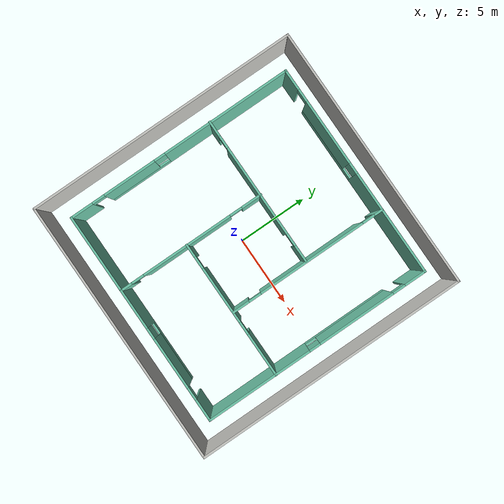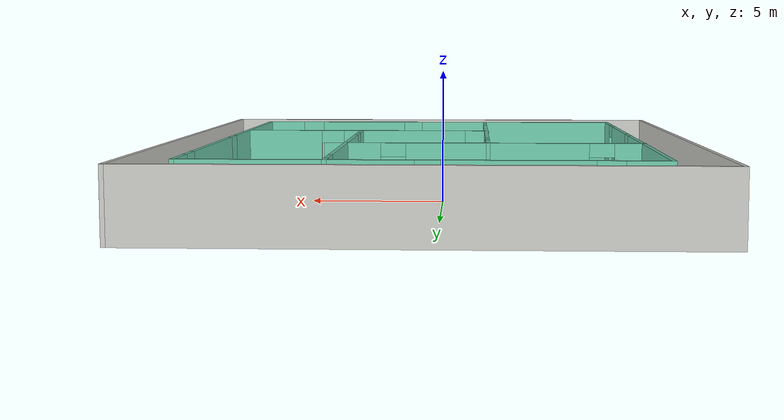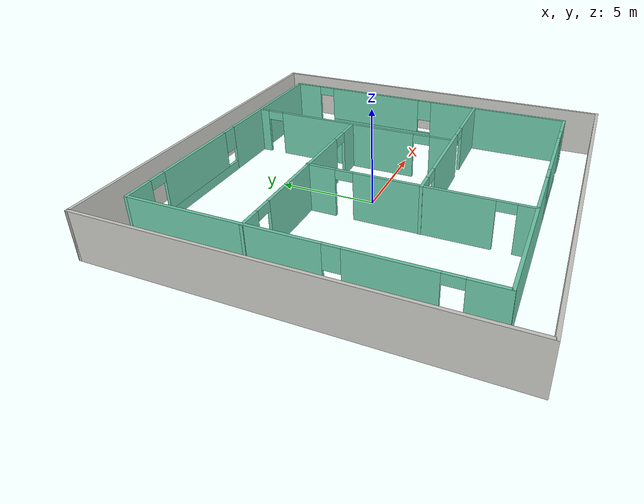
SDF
<?xml version='1.0'?>
<sdf version='1.6'>
  <model name='Building'>
    <pose frame=''>0.407103 0.041885 0 0 -0 0</pose>
    <link name='Wall_101'>
      <pose frame=''>-2.08663 -2.75527 0 0 -0 -1.5708</pose>
      <visual name='Wall_101_Visual_0'>
        <pose frame=''>-4.61745 0 1.25 0 -0 0</pose>
        <geometry>
          <box>
            <size>1.51509 0.15 2.5</size>
          </box>
        </geometry>
        <material>
          <script>
            <uri>file://media/materials/scripts/gazebo.material</uri>
            <name>Gazebo/Grey</name>
          </script>
          <ambient>0.435294 0.796078 0.67451 1</ambient>
        </material>
        <meta>
          <layer>0</layer>
        </meta>
      </visual>
      <collision name='Wall_101_Collision_0'>
        <geometry>
          <box>
            <size>1.51509 0.15 2.5</size>
          </box>
        </geometry>
        <pose frame=''>-4.61745 0 1.25 0 -0 0</pose>
      </collision>
      <visual name='Wall_101_Visual_1'>
        <pose frame=''>0.323003 0 1.25 0 -0 0</pose>
        <geometry>
          <box>
            <size>6.56583 0.15 2.5</size>
          </box>
        </geometry>
        <material>
          <script>
            <uri>file://media/materials/scripts/gazebo.material</uri>
            <name>Gazebo/Grey</name>
          </script>
          <ambient>0.435294 0.796078 0.67451 1</ambient>
        </material>
        <meta>
          <layer>0</layer>
        </meta>
      </visual>
      <collision name='Wall_101_Collision_1'>
        <geometry>
          <box>
            <size>6.56583 0.15 2.5</size>
          </box>
        </geometry>
        <pose frame=''>0.323003 0 1.25 0 -0 0</pose>
      </collision>
      <visual name='Wall_101_Visual_2'>
        <pose frame=''>4.94046 0 1.25 0 -0 0</pose>
        <geometry>
          <box>
            <size>0.869084 0.15 2.5</size>
          </box>
        </geometry>
        <material>
          <script>
            <uri>file://media/materials/scripts/gazebo.material</uri>
            <name>Gazebo/Grey</name>
          </script>
          <ambient>0.435294 0.796078 0.67451 1</ambient>
        </material>
        <meta>
          <layer>0</layer>
        </meta>
      </visual>
      <collision name='Wall_101_Collision_2'>
        <geometry>
          <box>
            <size>0.869084 0.15 2.5</size>
          </box>
        </geometry>
        <pose frame=''>4.94046 0 1.25 0 -0 0</pose>
      </collision>
      <visual name='Wall_101_Visual_3'>
        <pose frame=''>-3.40991 0 2.25 0 -0 0</pose>
        <geometry>
          <box>
            <size>0.9 0.15 0.5</size>
          </box>
        </geometry>
        <material>
          <script>
            <uri>file://media/materials/scripts/gazebo.material</uri>
            <name>Gazebo/Grey</name>
          </script>
          <ambient>0.435294 0.796078 0.67451 1</ambient>
        </material>
        <meta>
          <layer>0</layer>
        </meta>
      </visual>
      <collision name='Wall_101_Collision_3'>
        <geometry>
          <box>
            <size>0.9 0.15 0.5</size>
          </box>
        </geometry>
        <pose frame=''>-3.40991 0 2.25 0 -0 0</pose>
      </collision>
      <visual name='Wall_101_Visual_4'>
        <pose frame=''>4.05592 0 2.25 0 -0 0</pose>
        <geometry>
          <box>
            <size>0.9 0.15 0.5</size>
          </box>
        </geometry>
        <material>
          <script>
            <uri>file://media/materials/scripts/gazebo.material</uri>
            <name>Gazebo/Grey</name>
          </script>
          <ambient>0.435294 0.796078 0.67451 1</ambient>
        </material>
        <meta>
          <layer>0</layer>
        </meta>
      </visual>
      <collision name='Wall_101_Collision_4'>
        <geometry>
          <box>
            <size>0.9 0.15 0.5</size>
          </box>
        </geometry>
        <pose frame=''>4.05592 0 2.25 0 -0 0</pose>
      </collision>
    </link>
    <link name='Wall_84'>
      <collision name='Wall_84_Collision'>
        <geometry>
          <box>
            <size>19.5 0.15 2.5</size>
          </box>
        </geometry>
        <pose frame=''>0 0 1.25 0 -0 0</pose>
      </collision>
      <visual name='Wall_84_Visual'>
        <pose frame=''>0 0 1.25 0 -0 0</pose>
        <geometry>
          <box>
            <size>19.5 0.15 2.5</size>
          </box>
        </geometry>
        <material>
          <script>
            <uri>file://media/materials/scripts/gazebo.material</uri>
            <name>Gazebo/CeilingTiled</name>
          </script>
          <ambient>1 1 1 1</ambient>
        </material>
        <meta>
          <layer>0</layer>
        </meta>
      </visual>
      <pose frame=''>-9.425 0 0 0 -0 -1.5708</pose>
    </link>
    <link name='Wall_85'>
      <collision name='Wall_85_Collision'>
        <geometry>
          <box>
            <size>19 0.15 2.5</size>
          </box>
        </geometry>
        <pose frame=''>0 0 1.25 0 -0 0</pose>
      </collision>
      <visual name='Wall_85_Visual'>
        <pose frame=''>0 0 1.25 0 -0 0</pose>
        <geometry>
          <box>
            <size>19 0.15 2.5</size>
          </box>
        </geometry>
        <material>
          <script>
            <uri>file://media/materials/scripts/gazebo.material</uri>
            <name>Gazebo/CeilingTiled</name>
          </script>
          <ambient>1 1 1 1</ambient>
        </material>
        <meta>
          <layer>0</layer>
        </meta>
      </visual>
      <pose frame=''>0 -9.675 0 0 -0 0</pose>
    </link>
    <link name='Wall_86'>
      <collision name='Wall_86_Collision'>
        <geometry>
          <box>
            <size>19.5 0.15 2.5</size>
          </box>
        </geometry>
        <pose frame=''>0 0 1.25 0 -0 0</pose>
      </collision>
      <visual name='Wall_86_Visual'>
        <pose frame=''>0 0 1.25 0 -0 0</pose>
        <geometry>
          <box>
            <size>19.5 0.15 2.5</size>
          </box>
        </geometry>
        <material>
          <script>
            <uri>file://media/materials/scripts/gazebo.material</uri>
            <name>Gazebo/CeilingTiled</name>
          </script>
          <ambient>1 1 1 1</ambient>
        </material>
        <meta>
          <layer>0</layer>
        </meta>
      </visual>
      <pose frame=''>9.425 0 0 0 -0 1.5708</pose>
    </link>
    <link name='Wall_87'>
      <collision name='Wall_87_Collision'>
        <geometry>
          <box>
            <size>19 0.15 2.5</size>
          </box>
        </geometry>
        <pose frame=''>0 0 1.25 0 -0 0</pose>
      </collision>
      <visual name='Wall_87_Visual'>
        <pose frame=''>0 0 1.25 0 -0 0</pose>
        <geometry>
          <box>
            <size>19 0.15 2.5</size>
          </box>
        </geometry>
        <material>
          <script>
            <uri>file://media/materials/scripts/gazebo.material</uri>
            <name>Gazebo/CeilingTiled</name>
          </script>
          <ambient>1 1 1 1</ambient>
        </material>
        <meta>
          <layer>0</layer>
        </meta>
      </visual>
      <pose frame=''>0 9.675 0 0 -0 3.14159</pose>
    </link>
    <link name='Wall_88'>
      <collision name='Wall_88_Collision'>
        <geometry>
          <box>
            <size>0.16 0.15 2.5</size>
          </box>
        </geometry>
        <pose frame=''>0 0 1.25 0 -0 0</pose>
      </collision>
      <visual name='Wall_88_Visual'>
        <pose frame=''>0 0 1.25 0 -0 0</pose>
        <geometry>
          <box>
            <size>0.16 0.15 2.5</size>
          </box>
        </geometry>
        <material>
          <script>
            <uri>file://media/materials/scripts/gazebo.material</uri>
            <name>Gazebo/Grey</name>
          </script>
          <ambient>1 1 1 1</ambient>
        </material>
        <meta>
          <layer>0</layer>
        </meta>
      </visual>
      <pose frame=''>-9.42 9.675 0 0 -0 0</pose>
    </link>
    <link name='Wall_90'>
      <pose frame=''>-7.62558 0.103719 0 0 -0 -1.5708</pose>
      <visual name='Wall_90_Visual_0'>
        <pose frame=''>-3.59802 0 1.25 0 -0 0</pose>
        <geometry>
          <box>
            <size>9.30396 0.15 2.5</size>
          </box>
        </geometry>
        <material>
          <script>
            <uri>file://media/materials/scripts/gazebo.material</uri>
            <name>Gazebo/Grey</name>
          </script>
          <ambient>0.435294 0.796078 0.67451 1</ambient>
        </material>
        <meta>
          <layer>0</layer>
        </meta>
      </visual>
      <collision name='Wall_90_Collision_0'>
        <geometry>
          <box>
            <size>9.30396 0.15 2.5</size>
          </box>
        </geometry>
        <pose frame=''>-3.59802 0 1.25 0 -0 0</pose>
      </collision>
      <visual name='Wall_90_Visual_1'>
        <pose frame=''>7.40961 0 1.25 0 -0 0</pose>
        <geometry>
          <box>
            <size>1.68078 0.15 2.5</size>
          </box>
        </geometry>
        <material>
          <script>
            <uri>file://media/materials/scripts/gazebo.material</uri>
            <name>Gazebo/Grey</name>
          </script>
          <ambient>0.435294 0.796078 0.67451 1</ambient>
        </material>
        <meta>
          <layer>0</layer>
        </meta>
      </visual>
      <collision name='Wall_90_Collision_1'>
        <geometry>
          <box>
            <size>1.68078 0.15 2.5</size>
          </box>
        </geometry>
        <pose frame=''>7.40961 0 1.25 0 -0 0</pose>
      </collision>
      <visual name='Wall_90_Visual_2'>
        <pose frame=''>3.36159 0 0.25 0 -0 0</pose>
        <geometry>
          <box>
            <size>4.61526 0.15 0.5</size>
          </box>
        </geometry>
        <material>
          <script>
            <uri>file://media/materials/scripts/gazebo.material</uri>
            <name>Gazebo/Grey</name>
          </script>
          <ambient>0.435294 0.796078 0.67451 1</ambient>
        </material>
        <meta>
          <layer>0</layer>
        </meta>
      </visual>
      <collision name='Wall_90_Collision_2'>
        <geometry>
          <box>
            <size>4.61526 0.15 0.5</size>
          </box>
        </geometry>
        <pose frame=''>3.36159 0 0.25 0 -0 0</pose>
      </collision>
      <visual name='Wall_90_Visual_3'>
        <pose frame=''>3.76159 0 1.5 0 -0 0</pose>
        <geometry>
          <box>
            <size>3.81526 0.15 2</size>
          </box>
        </geometry>
        <material>
          <script>
            <uri>file://media/materials/scripts/gazebo.material</uri>
            <name>Gazebo/Grey</name>
          </script>
          <ambient>0.435294 0.796078 0.67451 1</ambient>
        </material>
        <meta>
          <layer>0</layer>
        </meta>
      </visual>
      <collision name='Wall_90_Collision_3'>
        <geometry>
          <box>
            <size>3.81526 0.15 2</size>
          </box>
        </geometry>
        <pose frame=''>3.76159 0 1.5 0 -0 0</pose>
      </collision>
      <visual name='Wall_90_Visual_4'>
        <pose frame=''>1.45396 0 1.9 0 -0 0</pose>
        <geometry>
          <box>
            <size>0.8 0.15 1.2</size>
          </box>
        </geometry>
        <material>
          <script>
            <uri>file://media/materials/scripts/gazebo.material</uri>
            <name>Gazebo/Grey</name>
          </script>
          <ambient>0.435294 0.796078 0.67451 1</ambient>
        </material>
        <meta>
          <layer>0</layer>
        </meta>
      </visual>
      <collision name='Wall_90_Collision_4'>
        <geometry>
          <box>
            <size>0.8 0.15 1.2</size>
          </box>
        </geometry>
        <pose frame=''>1.45396 0 1.9 0 -0 0</pose>
      </collision>
      <visual name='Wall_90_Visual_5'>
        <pose frame=''>6.11922 0 2.25 0 -0 0</pose>
        <geometry>
          <box>
            <size>0.9 0.15 0.5</size>
          </box>
        </geometry>
        <material>
          <script>
            <uri>file://media/materials/scripts/gazebo.material</uri>
            <name>Gazebo/Grey</name>
          </script>
          <ambient>0.435294 0.796078 0.67451 1</ambient>
        </material>
        <meta>
          <layer>0</layer>
        </meta>
      </visual>
      <collision name='Wall_90_Collision_5'>
        <geometry>
          <box>
            <size>0.9 0.15 0.5</size>
          </box>
        </geometry>
        <pose frame=''>6.11922 0 2.25 0 -0 0</pose>
      </collision>
    </link>
    <link name='Wall_91'>
      <pose frame=''>0.049418 -8.07128 0 0 -0 0</pose>
      <visual name='Wall_91_Visual_0'>
        <pose frame=''>-3.51293 0 1.25 0 -0 0</pose>
        <geometry>
          <box>
            <size>8.47414 0.15 2.5</size>
          </box>
        </geometry>
        <material>
          <script>
            <uri>file://media/materials/scripts/gazebo.material</uri>
            <name>Gazebo/Grey</name>
          </script>
          <ambient>0.435294 0.796078 0.67451 1</ambient>
        </material>
        <meta>
          <layer>0</layer>
        </meta>
      </visual>
      <collision name='Wall_91_Collision_0'>
        <geometry>
          <box>
            <size>8.47414 0.15 2.5</size>
          </box>
        </geometry>
        <pose frame=''>-3.51293 0 1.25 0 -0 0</pose>
      </collision>
      <visual name='Wall_91_Visual_1'>
        <pose frame=''>6.94158 0 1.25 0 -0 0</pose>
        <geometry>
          <box>
            <size>1.61685 0.15 2.5</size>
          </box>
        </geometry>
        <material>
          <script>
            <uri>file://media/materials/scripts/gazebo.material</uri>
            <name>Gazebo/Grey</name>
          </script>
          <ambient>0.435294 0.796078 0.67451 1</ambient>
        </material>
        <meta>
          <layer>0</layer>
        </meta>
      </visual>
      <collision name='Wall_91_Collision_1'>
        <geometry>
          <box>
            <size>1.61685 0.15 2.5</size>
          </box>
        </geometry>
        <pose frame=''>6.94158 0 1.25 0 -0 0</pose>
      </collision>
      <visual name='Wall_91_Visual_2'>
        <pose frame=''>2.97865 0 0.25 0 -0 0</pose>
        <geometry>
          <box>
            <size>4.50901 0.15 0.5</size>
          </box>
        </geometry>
        <material>
          <script>
            <uri>file://media/materials/scripts/gazebo.material</uri>
            <name>Gazebo/Grey</name>
          </script>
          <ambient>0.435294 0.796078 0.67451 1</ambient>
        </material>
        <meta>
          <layer>0</layer>
        </meta>
      </visual>
      <collision name='Wall_91_Collision_2'>
        <geometry>
          <box>
            <size>4.50901 0.15 0.5</size>
          </box>
        </geometry>
        <pose frame=''>2.97865 0 0.25 0 -0 0</pose>
      </collision>
      <visual name='Wall_91_Visual_3'>
        <pose frame=''>3.37865 0 1.5 0 -0 0</pose>
        <geometry>
          <box>
            <size>3.70901 0.15 2</size>
          </box>
        </geometry>
        <material>
          <script>
            <uri>file://media/materials/scripts/gazebo.material</uri>
            <name>Gazebo/Grey</name>
          </script>
          <ambient>0.435294 0.796078 0.67451 1</ambient>
        </material>
        <meta>
          <layer>0</layer>
        </meta>
      </visual>
      <collision name='Wall_91_Collision_3'>
        <geometry>
          <box>
            <size>3.70901 0.15 2</size>
          </box>
        </geometry>
        <pose frame=''>3.37865 0 1.5 0 -0 0</pose>
      </collision>
      <visual name='Wall_91_Visual_4'>
        <pose frame=''>1.12414 0 1.9 0 -0 0</pose>
        <geometry>
          <box>
            <size>0.8 0.15 1.2</size>
          </box>
        </geometry>
        <material>
          <script>
            <uri>file://media/materials/scripts/gazebo.material</uri>
            <name>Gazebo/Grey</name>
          </script>
          <ambient>0.435294 0.796078 0.67451 1</ambient>
        </material>
        <meta>
          <layer>0</layer>
        </meta>
      </visual>
      <collision name='Wall_91_Collision_4'>
        <geometry>
          <box>
            <size>0.8 0.15 1.2</size>
          </box>
        </geometry>
        <pose frame=''>1.12414 0 1.9 0 -0 0</pose>
      </collision>
      <visual name='Wall_91_Visual_5'>
        <pose frame=''>5.68315 0 2.25 0 -0 0</pose>
        <geometry>
          <box>
            <size>0.9 0.15 0.5</size>
          </box>
        </geometry>
        <material>
          <script>
            <uri>file://media/materials/scripts/gazebo.material</uri>
            <name>Gazebo/Grey</name>
          </script>
          <ambient>0.435294 0.796078 0.67451 1</ambient>
        </material>
        <meta>
          <layer>0</layer>
        </meta>
      </visual>
      <collision name='Wall_91_Collision_5'>
        <geometry>
          <box>
            <size>0.9 0.15 0.5</size>
          </box>
        </geometry>
        <pose frame=''>5.68315 0 2.25 0 -0 0</pose>
      </collision>
    </link>
    <link name='Wall_92'>
      <pose frame=''>7.72442 0.103719 0 0 -0 1.5708</pose>
      <visual name='Wall_92_Visual_0'>
        <pose frame=''>-4.42448 0 1.25 0 -0 0</pose>
        <geometry>
          <box>
            <size>7.65104 0.15 2.5</size>
          </box>
        </geometry>
        <material>
          <script>
            <uri>file://media/materials/scripts/gazebo.material</uri>
            <name>Gazebo/Grey</name>
          </script>
          <ambient>0.435294 0.796078 0.67451 1</ambient>
        </material>
        <meta>
          <layer>0</layer>
        </meta>
      </visual>
      <collision name='Wall_92_Collision_0'>
        <geometry>
          <box>
            <size>7.65104 0.15 2.5</size>
          </box>
        </geometry>
        <pose frame=''>-4.42448 0 1.25 0 -0 0</pose>
      </collision>
      <visual name='Wall_92_Visual_1'>
        <pose frame=''>7.45345 0 1.25 0 -0 0</pose>
        <geometry>
          <box>
            <size>1.5931 0.15 2.5</size>
          </box>
        </geometry>
        <material>
          <script>
            <uri>file://media/materials/scripts/gazebo.material</uri>
            <name>Gazebo/Grey</name>
          </script>
          <ambient>0.435294 0.796078 0.67451 1</ambient>
        </material>
        <meta>
          <layer>0</layer>
        </meta>
      </visual>
      <collision name='Wall_92_Collision_1'>
        <geometry>
          <box>
            <size>1.5931 0.15 2.5</size>
          </box>
        </geometry>
        <pose frame=''>7.45345 0 1.25 0 -0 0</pose>
      </collision>
      <visual name='Wall_92_Visual_2'>
        <pose frame=''>2.57897 0 0.25 0 -0 0</pose>
        <geometry>
          <box>
            <size>6.35586 0.15 0.5</size>
          </box>
        </geometry>
        <material>
          <script>
            <uri>file://media/materials/scripts/gazebo.material</uri>
            <name>Gazebo/Grey</name>
          </script>
          <ambient>0.435294 0.796078 0.67451 1</ambient>
        </material>
        <meta>
          <layer>0</layer>
        </meta>
      </visual>
      <collision name='Wall_92_Collision_2'>
        <geometry>
          <box>
            <size>6.35586 0.15 0.5</size>
          </box>
        </geometry>
        <pose frame=''>2.57897 0 0.25 0 -0 0</pose>
      </collision>
      <visual name='Wall_92_Visual_3'>
        <pose frame=''>2.97897 0 1.5 0 -0 0</pose>
        <geometry>
          <box>
            <size>5.55586 0.15 2</size>
          </box>
        </geometry>
        <material>
          <script>
            <uri>file://media/materials/scripts/gazebo.material</uri>
            <name>Gazebo/Grey</name>
          </script>
          <ambient>0.435294 0.796078 0.67451 1</ambient>
        </material>
        <meta>
          <layer>0</layer>
        </meta>
      </visual>
      <collision name='Wall_92_Collision_3'>
        <geometry>
          <box>
            <size>5.55586 0.15 2</size>
          </box>
        </geometry>
        <pose frame=''>2.97897 0 1.5 0 -0 0</pose>
      </collision>
      <visual name='Wall_92_Visual_4'>
        <pose frame=''>-0.198964 0 1.9 0 -0 0</pose>
        <geometry>
          <box>
            <size>0.8 0.15 1.2</size>
          </box>
        </geometry>
        <material>
          <script>
            <uri>file://media/materials/scripts/gazebo.material</uri>
            <name>Gazebo/Grey</name>
          </script>
          <ambient>0.435294 0.796078 0.67451 1</ambient>
        </material>
        <meta>
          <layer>0</layer>
        </meta>
      </visual>
      <collision name='Wall_92_Collision_4'>
        <geometry>
          <box>
            <size>0.8 0.15 1.2</size>
          </box>
        </geometry>
        <pose frame=''>-0.198964 0 1.9 0 -0 0</pose>
      </collision>
      <visual name='Wall_92_Visual_5'>
        <pose frame=''>6.2069 0 2.25 0 -0 0</pose>
        <geometry>
          <box>
            <size>0.9 0.15 0.5</size>
          </box>
        </geometry>
        <material>
          <script>
            <uri>file://media/materials/scripts/gazebo.material</uri>
            <name>Gazebo/Grey</name>
          </script>
          <ambient>0.435294 0.796078 0.67451 1</ambient>
        </material>
        <meta>
          <layer>0</layer>
        </meta>
      </visual>
      <collision name='Wall_92_Collision_5'>
        <geometry>
          <box>
            <size>0.9 0.15 0.5</size>
          </box>
        </geometry>
        <pose frame=''>6.2069 0 2.25 0 -0 0</pose>
      </collision>
    </link>
    <link name='Wall_93'>
      <pose frame=''>0.049418 8.27872 0 0 -0 3.14159</pose>
      <visual name='Wall_93_Visual_0'>
        <pose frame=''>-3.97565 0 1.25 0 -0 0</pose>
        <geometry>
          <box>
            <size>7.5487 0.15 2.5</size>
          </box>
        </geometry>
        <material>
          <script>
            <uri>file://media/materials/scripts/gazebo.material</uri>
            <name>Gazebo/Grey</name>
          </script>
          <ambient>0.435294 0.796078 0.67451 1</ambient>
        </material>
        <meta>
          <layer>0</layer>
        </meta>
      </visual>
      <collision name='Wall_93_Collision_0'>
        <geometry>
          <box>
            <size>7.5487 0.15 2.5</size>
          </box>
        </geometry>
        <pose frame=''>-3.97565 0 1.25 0 -0 0</pose>
      </collision>
      <visual name='Wall_93_Visual_1'>
        <pose frame=''>6.99241 0 1.25 0 -0 0</pose>
        <geometry>
          <box>
            <size>1.51518 0.15 2.5</size>
          </box>
        </geometry>
        <material>
          <script>
            <uri>file://media/materials/scripts/gazebo.material</uri>
            <name>Gazebo/Grey</name>
          </script>
          <ambient>0.435294 0.796078 0.67451 1</ambient>
        </material>
        <meta>
          <layer>0</layer>
        </meta>
      </visual>
      <collision name='Wall_93_Collision_1'>
        <geometry>
          <box>
            <size>1.51518 0.15 2.5</size>
          </box>
        </geometry>
        <pose frame=''>6.99241 0 1.25 0 -0 0</pose>
      </collision>
      <visual name='Wall_93_Visual_2'>
        <pose frame=''>2.56676 0 0.25 0 -0 0</pose>
        <geometry>
          <box>
            <size>5.53612 0.15 0.5</size>
          </box>
        </geometry>
        <material>
          <script>
            <uri>file://media/materials/scripts/gazebo.material</uri>
            <name>Gazebo/Grey</name>
          </script>
          <ambient>0.435294 0.796078 0.67451 1</ambient>
        </material>
        <meta>
          <layer>0</layer>
        </meta>
      </visual>
      <collision name='Wall_93_Collision_2'>
        <geometry>
          <box>
            <size>5.53612 0.15 0.5</size>
          </box>
        </geometry>
        <pose frame=''>2.56676 0 0.25 0 -0 0</pose>
      </collision>
      <visual name='Wall_93_Visual_3'>
        <pose frame=''>2.96676 0 1.5 0 -0 0</pose>
        <geometry>
          <box>
            <size>4.73612 0.15 2</size>
          </box>
        </geometry>
        <material>
          <script>
            <uri>file://media/materials/scripts/gazebo.material</uri>
            <name>Gazebo/Grey</name>
          </script>
          <ambient>0.435294 0.796078 0.67451 1</ambient>
        </material>
        <meta>
          <layer>0</layer>
        </meta>
      </visual>
      <collision name='Wall_93_Collision_3'>
        <geometry>
          <box>
            <size>4.73612 0.15 2</size>
          </box>
        </geometry>
        <pose frame=''>2.96676 0 1.5 0 -0 0</pose>
      </collision>
      <visual name='Wall_93_Visual_4'>
        <pose frame=''>0.198698 0 1.9 0 -0 0</pose>
        <geometry>
          <box>
            <size>0.8 0.15 1.2</size>
          </box>
        </geometry>
        <material>
          <script>
            <uri>file://media/materials/scripts/gazebo.material</uri>
            <name>Gazebo/Grey</name>
          </script>
          <ambient>0.435294 0.796078 0.67451 1</ambient>
        </material>
        <meta>
          <layer>0</layer>
        </meta>
      </visual>
      <collision name='Wall_93_Collision_4'>
        <geometry>
          <box>
            <size>0.8 0.15 1.2</size>
          </box>
        </geometry>
        <pose frame=''>0.198698 0 1.9 0 -0 0</pose>
      </collision>
      <visual name='Wall_93_Visual_5'>
        <pose frame=''>5.78482 0 2.25 0 -0 0</pose>
        <geometry>
          <box>
            <size>0.9 0.15 0.5</size>
          </box>
        </geometry>
        <material>
          <script>
            <uri>file://media/materials/scripts/gazebo.material</uri>
            <name>Gazebo/Grey</name>
          </script>
          <ambient>0.435294 0.796078 0.67451 1</ambient>
        </material>
        <meta>
          <layer>0</layer>
        </meta>
      </visual>
      <collision name='Wall_93_Collision_5'>
        <geometry>
          <box>
            <size>0.9 0.15 0.5</size>
          </box>
        </geometry>
        <pose frame=''>5.78482 0 2.25 0 -0 0</pose>
      </collision>
    </link>
    <link name='Wall_95'>
      <pose frame=''>-2.36459 2.50573 0 0 -0 0</pose>
      <visual name='Wall_95_Visual_0'>
        <pose frame=''>-4.80187 0 1.25 0 -0 0</pose>
        <geometry>
          <box>
            <size>1.14626 0.15 2.5</size>
          </box>
        </geometry>
        <material>
          <script>
            <uri>file://media/materials/scripts/gazebo.material</uri>
            <name>Gazebo/Grey</name>
          </script>
          <ambient>0.435294 0.796078 0.67451 1</ambient>
        </material>
        <meta>
          <layer>0</layer>
        </meta>
      </visual>
      <collision name='Wall_95_Collision_0'>
        <geometry>
          <box>
            <size>1.14626 0.15 2.5</size>
          </box>
        </geometry>
        <pose frame=''>-4.80187 0 1.25 0 -0 0</pose>
      </collision>
      <visual name='Wall_95_Visual_1'>
        <pose frame=''>-0.044669 0 1.25 0 -0 0</pose>
        <geometry>
          <box>
            <size>6.56814 0.15 2.5</size>
          </box>
        </geometry>
        <material>
          <script>
            <uri>file://media/materials/scripts/gazebo.material</uri>
            <name>Gazebo/Grey</name>
          </script>
          <ambient>0.435294 0.796078 0.67451 1</ambient>
        </material>
        <meta>
          <layer>0</layer>
        </meta>
      </visual>
      <collision name='Wall_95_Collision_1'>
        <geometry>
          <box>
            <size>6.56814 0.15 2.5</size>
          </box>
        </geometry>
        <pose frame=''>-0.044669 0 1.25 0 -0 0</pose>
      </collision>
      <visual name='Wall_95_Visual_2'>
        <pose frame=''>4.7572 0 1.25 0 -0 0</pose>
        <geometry>
          <box>
            <size>1.2356 0.15 2.5</size>
          </box>
        </geometry>
        <material>
          <script>
            <uri>file://media/materials/scripts/gazebo.material</uri>
            <name>Gazebo/Grey</name>
          </script>
          <ambient>0.435294 0.796078 0.67451 1</ambient>
        </material>
        <meta>
          <layer>0</layer>
        </meta>
      </visual>
      <collision name='Wall_95_Collision_2'>
        <geometry>
          <box>
            <size>1.2356 0.15 2.5</size>
          </box>
        </geometry>
        <pose frame=''>4.7572 0 1.25 0 -0 0</pose>
      </collision>
      <visual name='Wall_95_Visual_3'>
        <pose frame=''>-3.77874 0 2.25 0 -0 0</pose>
        <geometry>
          <box>
            <size>0.9 0.15 0.5</size>
          </box>
        </geometry>
        <material>
          <script>
            <uri>file://media/materials/scripts/gazebo.material</uri>
            <name>Gazebo/Grey</name>
          </script>
          <ambient>0.435294 0.796078 0.67451 1</ambient>
        </material>
        <meta>
          <layer>0</layer>
        </meta>
      </visual>
      <collision name='Wall_95_Collision_3'>
        <geometry>
          <box>
            <size>0.9 0.15 0.5</size>
          </box>
        </geometry>
        <pose frame=''>-3.77874 0 2.25 0 -0 0</pose>
      </collision>
      <visual name='Wall_95_Visual_4'>
        <pose frame=''>3.6894 0 2.25 0 -0 0</pose>
        <geometry>
          <box>
            <size>0.9 0.15 0.5</size>
          </box>
        </geometry>
        <material>
          <script>
            <uri>file://media/materials/scripts/gazebo.material</uri>
            <name>Gazebo/Grey</name>
          </script>
          <ambient>0.435294 0.796078 0.67451 1</ambient>
        </material>
        <meta>
          <layer>0</layer>
        </meta>
      </visual>
      <collision name='Wall_95_Collision_4'>
        <geometry>
          <box>
            <size>0.9 0.15 0.5</size>
          </box>
        </geometry>
        <pose frame=''>3.6894 0 2.25 0 -0 0</pose>
      </collision>
    </link>
    <link name='Wall_97'>
      <pose frame=''>3.02325 2.60372 0 0 -0 -1.5708</pose>
      <visual name='Wall_97_Visual_0'>
        <pose frame=''>-5.42153 0 1.25 0 -0 0</pose>
        <geometry>
          <box>
            <size>0.656941 0.15 2.5</size>
          </box>
        </geometry>
        <material>
          <script>
            <uri>file://media/materials/scripts/gazebo.material</uri>
            <name>Gazebo/Grey</name>
          </script>
          <ambient>0.435294 0.796078 0.67451 1</ambient>
        </material>
        <meta>
          <layer>0</layer>
        </meta>
      </visual>
      <collision name='Wall_97_Collision_0'>
        <geometry>
          <box>
            <size>0.656941 0.15 2.5</size>
          </box>
        </geometry>
        <pose frame=''>-5.42153 0 1.25 0 -0 0</pose>
      </collision>
      <visual name='Wall_97_Visual_1'>
        <pose frame=''>-0.309795 0 1.25 0 -0 0</pose>
        <geometry>
          <box>
            <size>7.76653 0.15 2.5</size>
          </box>
        </geometry>
        <material>
          <script>
            <uri>file://media/materials/scripts/gazebo.material</uri>
            <name>Gazebo/Grey</name>
          </script>
          <ambient>0.435294 0.796078 0.67451 1</ambient>
        </material>
        <meta>
          <layer>0</layer>
        </meta>
      </visual>
      <collision name='Wall_97_Collision_1'>
        <geometry>
          <box>
            <size>7.76653 0.15 2.5</size>
          </box>
        </geometry>
        <pose frame=''>-0.309795 0 1.25 0 -0 0</pose>
      </collision>
      <visual name='Wall_97_Visual_2'>
        <pose frame=''>5.11174 0 1.25 0 -0 0</pose>
        <geometry>
          <box>
            <size>1.27653 0.15 2.5</size>
          </box>
        </geometry>
        <material>
          <script>
            <uri>file://media/materials/scripts/gazebo.material</uri>
            <name>Gazebo/Grey</name>
          </script>
          <ambient>0.435294 0.796078 0.67451 1</ambient>
        </material>
        <meta>
          <layer>0</layer>
        </meta>
      </visual>
      <collision name='Wall_97_Collision_2'>
        <geometry>
          <box>
            <size>1.27653 0.15 2.5</size>
          </box>
        </geometry>
        <pose frame=''>5.11174 0 1.25 0 -0 0</pose>
      </collision>
      <visual name='Wall_97_Visual_3'>
        <pose frame=''>-4.64306 0 2.25 0 -0 0</pose>
        <geometry>
          <box>
            <size>0.9 0.15 0.5</size>
          </box>
        </geometry>
        <material>
          <script>
            <uri>file://media/materials/scripts/gazebo.material</uri>
            <name>Gazebo/Grey</name>
          </script>
          <ambient>0.435294 0.796078 0.67451 1</ambient>
        </material>
        <meta>
          <layer>0</layer>
        </meta>
      </visual>
      <collision name='Wall_97_Collision_3'>
        <geometry>
          <box>
            <size>0.9 0.15 0.5</size>
          </box>
        </geometry>
        <pose frame=''>-4.64306 0 2.25 0 -0 0</pose>
      </collision>
      <visual name='Wall_97_Visual_4'>
        <pose frame=''>4.02347 0 2.25 0 -0 0</pose>
        <geometry>
          <box>
            <size>0.9 0.15 0.5</size>
          </box>
        </geometry>
        <material>
          <script>
            <uri>file://media/materials/scripts/gazebo.material</uri>
            <name>Gazebo/Grey</name>
          </script>
          <ambient>0.435294 0.796078 0.67451 1</ambient>
        </material>
        <meta>
          <layer>0</layer>
        </meta>
      </visual>
      <collision name='Wall_97_Collision_4'>
        <geometry>
          <box>
            <size>0.9 0.15 0.5</size>
          </box>
        </geometry>
        <pose frame=''>4.02347 0 2.25 0 -0 0</pose>
      </collision>
    </link>
    <link name='Wall_99'>
      <pose frame=''>2.81806 -3.07223 0 0 -0 3.14159</pose>
      <visual name='Wall_99_Visual_0'>
        <pose frame=''>-3.42162 0 1.25 0 -0 0</pose>
        <geometry>
          <box>
            <size>3.15675 0.15 2.5</size>
          </box>
        </geometry>
        <material>
          <script>
            <uri>file://media/materials/scripts/gazebo.material</uri>
            <name>Gazebo/Grey</name>
          </script>
          <ambient>0.435294 0.796078 0.67451 1</ambient>
        </material>
        <meta>
          <layer>0</layer>
        </meta>
      </visual>
      <collision name='Wall_99_Collision_0'>
        <geometry>
          <box>
            <size>3.15675 0.15 2.5</size>
          </box>
        </geometry>
        <pose frame=''>-3.42162 0 1.25 0 -0 0</pose>
      </collision>
      <visual name='Wall_99_Visual_1'>
        <pose frame=''>1.10318 0 1.25 0 -0 0</pose>
        <geometry>
          <box>
            <size>4.09286 0.15 2.5</size>
          </box>
        </geometry>
        <material>
          <script>
            <uri>file://media/materials/scripts/gazebo.material</uri>
            <name>Gazebo/Grey</name>
          </script>
          <ambient>0.435294 0.796078 0.67451 1</ambient>
        </material>
        <meta>
          <layer>0</layer>
        </meta>
      </visual>
      <collision name='Wall_99_Collision_1'>
        <geometry>
          <box>
            <size>4.09286 0.15 2.5</size>
          </box>
        </geometry>
        <pose frame=''>1.10318 0 1.25 0 -0 0</pose>
      </collision>
      <visual name='Wall_99_Visual_2'>
        <pose frame=''>4.52481 0 1.25 0 -0 0</pose>
        <geometry>
          <box>
            <size>0.950387 0.15 2.5</size>
          </box>
        </geometry>
        <material>
          <script>
            <uri>file://media/materials/scripts/gazebo.material</uri>
            <name>Gazebo/Grey</name>
          </script>
          <ambient>0.435294 0.796078 0.67451 1</ambient>
        </material>
        <meta>
          <layer>0</layer>
        </meta>
      </visual>
      <collision name='Wall_99_Collision_2'>
        <geometry>
          <box>
            <size>0.950387 0.15 2.5</size>
          </box>
        </geometry>
        <pose frame=''>4.52481 0 1.25 0 -0 0</pose>
      </collision>
      <visual name='Wall_99_Visual_3'>
        <pose frame=''>-1.39325 0 2.25 0 -0 0</pose>
        <geometry>
          <box>
            <size>0.9 0.15 0.5</size>
          </box>
        </geometry>
        <material>
          <script>
            <uri>file://media/materials/scripts/gazebo.material</uri>
            <name>Gazebo/Grey</name>
          </script>
          <ambient>0.435294 0.796078 0.67451 1</ambient>
        </material>
        <meta>
          <layer>0</layer>
        </meta>
      </visual>
      <collision name='Wall_99_Collision_3'>
        <geometry>
          <box>
            <size>0.9 0.15 0.5</size>
          </box>
        </geometry>
        <pose frame=''>-1.39325 0 2.25 0 -0 0</pose>
      </collision>
      <visual name='Wall_99_Visual_4'>
        <pose frame=''>3.59961 0 2.25 0 -0 0</pose>
        <geometry>
          <box>
            <size>0.9 0.15 0.5</size>
          </box>
        </geometry>
        <material>
          <script>
            <uri>file://media/materials/scripts/gazebo.material</uri>
            <name>Gazebo/Grey</name>
          </script>
          <ambient>0.435294 0.796078 0.67451 1</ambient>
        </material>
        <meta>
          <layer>0</layer>
        </meta>
      </visual>
      <collision name='Wall_99_Collision_4'>
        <geometry>
          <box>
            <size>0.9 0.15 0.5</size>
          </box>
        </geometry>
        <pose frame=''>3.59961 0 2.25 0 -0 0</pose>
      </collision>
    </link>
    <static>1</static>
  </model>
</sdf>
